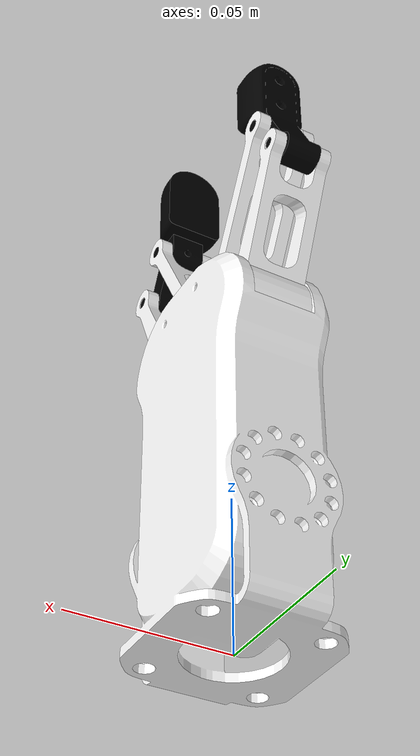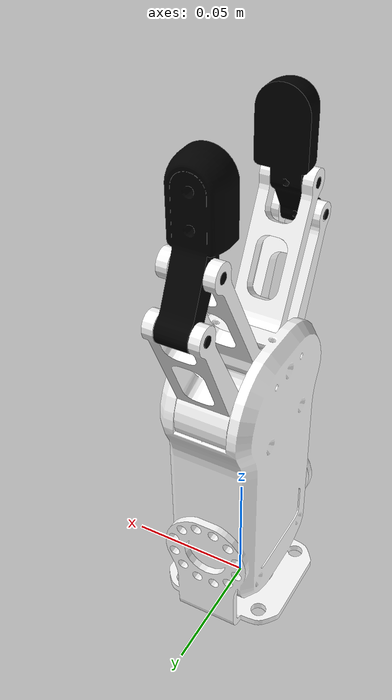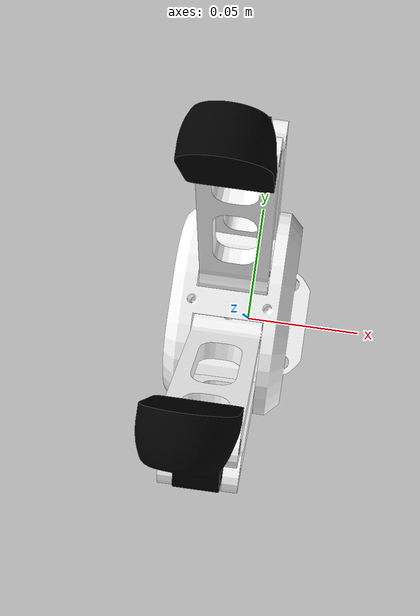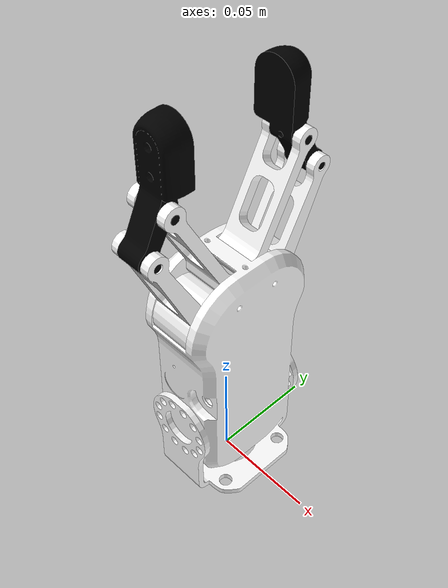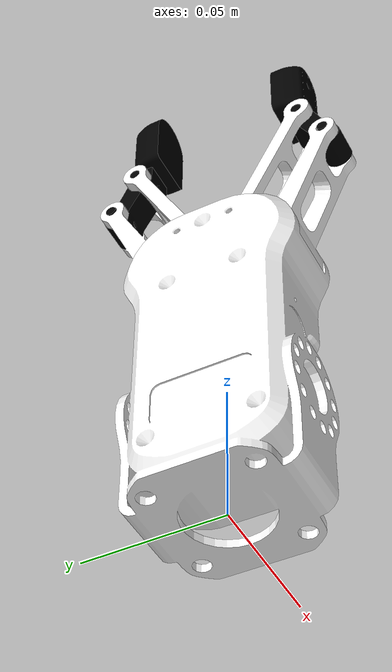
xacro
<?xml version="1.0"?>
<robot xmlns:xacro="http://ros.org/wiki/xacro" name="rg2_gripper">

  <!-- argument -->
  <xacro:arg name='is_ignition' default='true' />

  <!-- include -->
  <xacro:include filename="$(find rg2_description)/urdf/rg2.gazebo.xacro"/>
  <xacro:include filename="$(find rg2_description)/urdf/rg2.ros2_control.xacro"/>

  <!-- Properties -->
  <xacro:property name="PI" value="3.14159265359" />
  <xacro:property name="effort" value="10.6" />
  <xacro:property name="velocity" value="3.14" />

  <!-- Macros -->
  <xacro:macro name="default_inertial" params="mass">
    <inertial>
      <origin xyz="0 0 0" rpy="0 0 0"/>
      <mass value="${mass}" />
      <inertia ixx="1.0" ixy="0.0" ixz="0.0" iyy="1.0" iyz="0.0" izz="1.0"/>
    </inertial>
  </xacro:macro>

  <xacro:macro name="color_visual" params="color_name" >
    <material name="${color_name}">
        <xacro:if value="${color_name == 'black'}">
          <color rgba="0.0 0.0 0.0 1.0"/>
        </xacro:if>
        <xacro:if value="${color_name == 'white'}">
          <color rgba="1.0 1.0 1.0 1.0"/>
        </xacro:if>
    </material>
  </xacro:macro>

  <!-- Links -->
  <link name="world"/>

  <link name="base_link">
    <xacro:default_inertial mass="1.0"/>
    <visual>
      <geometry>
        <mesh filename="package://rg2_description/meshes/visual/RG2_Hand_vis.STL"/>
      </geometry>
      <xacro:color_visual color_name='white' />
    </visual>
    <collision>
      <geometry>
        <mesh filename="package://rg2_description/meshes/collision/RG2_Hand_col.STL"/>
      </geometry>
    </collision>
  </link>

  <link name="l_moment_arm_link">
    <xacro:default_inertial mass="0.16"/>
    <visual>
      <geometry>
        <mesh filename="package://rg2_description/meshes/visual/RG2_LeftMomentArm_vis.STL"/>
      </geometry>
      <xacro:color_visual color_name='white' />
    </visual>
    <collision>
      <geometry>
        <mesh filename="package://rg2_description/meshes/collision/RG2_LeftMomentArm_col.STL"/>
      </geometry>
    </collision>
  </link>

  <link name="l_finger_link">
    <xacro:default_inertial mass="0.08"/>
    <visual>
      <geometry>
        <mesh filename="package://rg2_description/meshes/visual/RG2_LeftFinger_vis.STL"/>
      </geometry>
      <xacro:color_visual color_name='black' />
    </visual>
    <collision>
      <geometry>
        <mesh filename="package://rg2_description/meshes/collision/RG2_LeftFinger_col.STL"/>
      </geometry>
    </collision>
  </link>

  <link name="l_truss_arm_link">
    <xacro:default_inertial mass="0.07"/>
    <visual>
      <geometry>
        <mesh filename="package://rg2_description/meshes/visual/RG2_LeftTrussArm_vis.STL"/>
      </geometry>
      <xacro:color_visual color_name='white' />
    </visual>
    <collision>
      <geometry>
        <mesh filename="package://rg2_description/meshes/collision/RG2_LeftTrussArm_col.STL"/>
      </geometry>
    </collision>
  </link>

  <link name="r_moment_arm_link">
    <xacro:default_inertial mass="0.16"/>
    <visual>
      <geometry>
        <mesh filename="package://rg2_description/meshes/visual/RG2_RightMomentArm_vis.STL"/>
      </geometry>
      <xacro:color_visual color_name='white' />
    </visual>
    <collision>
      <geometry>
        <mesh filename="package://rg2_description/meshes/collision/RG2_RightMomentArm_col.STL"/>
      </geometry>
    </collision>
  </link>

  <link name="r_finger_link">
    <xacro:default_inertial mass="0.08"/>
    <visual>
      <geometry>
        <mesh filename="package://rg2_description/meshes/visual/RG2_RightFinger_vis.STL"/>
      </geometry>
      <xacro:color_visual color_name='black' />
    </visual>
    <collision>
      <geometry>
        <mesh filename="package://rg2_description/meshes/collision/RG2_RightFinger_col.STL"/>
      </geometry>
    </collision>
  </link>

  <link name="r_truss_arm_link">
    <xacro:default_inertial mass="0.07"/>
    <visual>
      <geometry>
        <mesh filename="package://rg2_description/meshes/visual/RG2_RightTrussArm_vis.STL"/>
      </geometry>
      <xacro:color_visual color_name='white' />
    </visual>
    <collision>
      <geometry>
        <mesh filename="package://rg2_description/meshes/collision/RG2_RightTrussArm_col.STL"/>
      </geometry>
    </collision>
  </link>

  <!-- Joints -->
  <joint name="virtual_joint" type="fixed">
    <parent link="world"/>
    <child link="base_link"/>
    <origin xyz="0 0 0" rpy="0 -1.5707 0"/>
  </joint>

  <joint name="gripper_joint" type="revolute">
    <parent link="base_link"/>
    <child link="l_moment_arm_link"/>
    <origin xyz="0.105 0.017 0.010"/>
    <axis xyz="0 0 1"/>
    <limit lower="-0.45" upper="${PI*0.5}" effort="${effort}" velocity="${velocity}"/>
  </joint>

  <joint name="l_finger_2_joint" type="revolute">
    <parent link="l_moment_arm_link"/>
    <child link="l_finger_link"/>
    <origin xyz="0.049 0.026 0.000"/>
    <axis xyz="0 0 1"/>
    <limit lower="-${PI/2}" upper="${PI/2}" effort="${effort}" velocity="${velocity}"/>
    <mimic joint="gripper_joint" multiplier="-1"/>
  </joint>

  <joint name="l_finger_passive_joint" type="revolute">
    <parent link="base_link"/>
    <child link="l_truss_arm_link"/>
    <origin xyz="0.122 0.008 0.010"/>
    <axis xyz="0 0 1"/>
    <limit lower="-${PI/2}" upper="${PI/2}" effort="${effort}" velocity="${velocity}"/>
    <mimic joint="gripper_joint" multiplier="1"/>
  </joint>

  <joint name="r_finger_1_joint" type="revolute">
    <parent link="base_link"/>
    <child link="r_moment_arm_link"/>
    <origin xyz="0.105 -0.017 0.010"/>
    <axis xyz="0 0 1"/>
    <limit lower="-${PI/2}" upper="${PI/2}" effort="${effort}" velocity="${velocity}"/>
    <mimic joint="gripper_joint" multiplier="-1"/>
  </joint>

  <joint name="r_finger_2_joint" type="revolute">
    <parent link="r_moment_arm_link"/>
    <child link="r_finger_link"/>
    <origin xyz="0.049 -0.026 0.000"/>
    <axis xyz="0 0 1"/>
    <limit lower="-${PI/2}" upper="${PI/2}" effort="${effort}" velocity="${velocity}"/>
    <mimic joint="gripper_joint" multiplier="1"/>
  </joint>

  <joint name="r_finger_passive_joint" type="revolute">
    <parent link="base_link"/>
    <child link="r_truss_arm_link"/>
    <origin xyz="0.122 -0.008 0.010"/>
    <axis xyz="0 0 1"/>
    <limit lower="-${PI/2}" upper="${PI/2}" effort="${effort}" velocity="${velocity}"/>
    <mimic joint="gripper_joint" multiplier="-1"/>
  </joint>

</robot>
